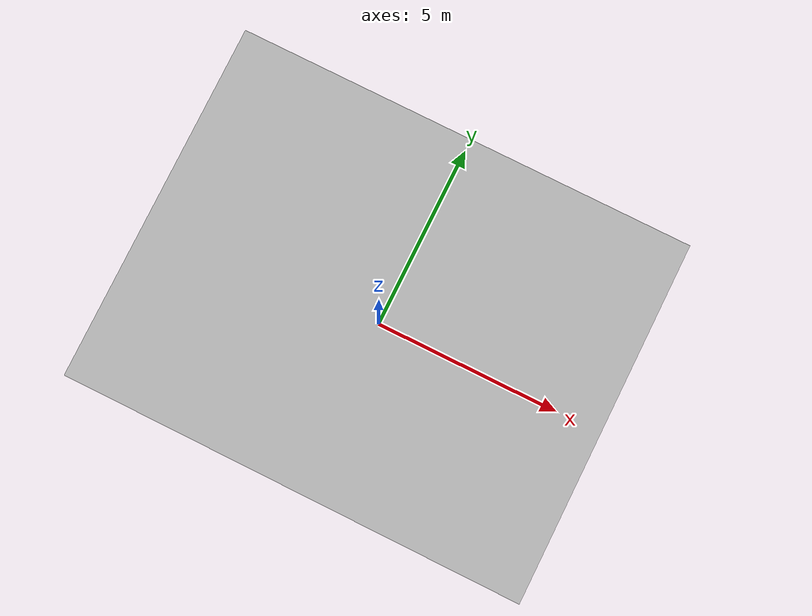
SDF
<?xml version="1.0" ?>
<sdf version="1.5">
  <model name="teknofesttunel">
    <static>true</static>
    <link name="link">
      <collision name="collision">
        <geometry>
          <mesh>
            <uri>model://teknofesttunel/meshes/teknofesttunel.dae</uri>
          </mesh>
        </geometry>
      </collision>
      <visual name="visual">
        <geometry>
          <mesh>
            <uri>model://teknofesttunel/meshes/teknofesttunel.dae</uri>
          </mesh>
        </geometry>
        <material>
          <script>
            <uri>model://teknofesttunel/meshes/teknofesttunel.png</uri>
          </script>
        </material>
      </visual>
    </link>
  </model>
</sdf>
